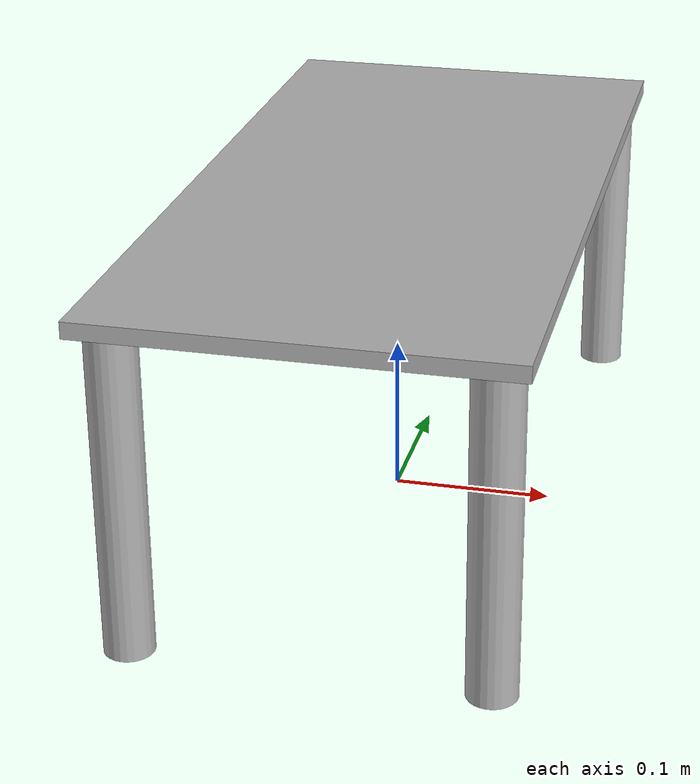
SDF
<?xml version="1.0" ?>
<sdf version="1.5">
  <model name="ra_table">
    <static>True</static>
    <link name="link">
      <collision name="plate">
        <pose>0 0 0.11  0 0 0</pose>
        <geometry>
          <box> <size> 0.25 0.50 0.01 </size> </box>
        </geometry>
      </collision>
      <collision name="leg0">
        <pose>0.105 0.23 0.05  0 0 0</pose>
        <geometry>
          <cylinder>
            <radius>0.015</radius>
            <length>0.1</length>
          </cylinder>
        </geometry>
      </collision>
      <collision name="leg1">
        <pose>-0.105 0.23 0.05  0 0 0</pose>
        <geometry>
          <cylinder>
            <radius>0.015</radius>
            <length>0.1</length>
          </cylinder>
        </geometry>
      </collision>
      <collision name="leg2">
        <pose>0.105 -0.23 0.05  0 0 0</pose>
        <geometry>
          <cylinder>
            <radius>0.015</radius>
            <length>0.1</length>
          </cylinder>
        </geometry>
      </collision>
      <collision name="leg3">
        <pose>-0.105 -0.23 0.05  0 0 0</pose>
        <geometry>
          <cylinder>
            <radius>0.015</radius>
            <length>0.1</length>
          </cylinder>
        </geometry>
      </collision>
      <visual name="plate">
        <pose>0 0 0.205  0 0 0</pose>
        <geometry>
          <box> <size> 0.25 0.50 0.01 </size> </box>
        </geometry>
        <material>
          <ambient>.55 .55 .6 1</ambient>
          <diffuse>.7 .7 .7 1</diffuse>
          <specular>0.1 0.1 0.1 1</specular>
        </material>
      </visual>
      <visual name="leg0">
        <pose>0.105 0.23 0.1  0 0 0</pose>
        <geometry>
          <cylinder>
            <radius>0.015</radius>
            <length>0.2</length>
          </cylinder>
        </geometry>
        <material>
          <ambient>.55 .55 .6 1</ambient>
          <diffuse>.7 .7 .7 1</diffuse>
          <specular>0.1 0.1 0.1 1</specular>
        </material>
      </visual>
      <visual name="leg1">
        <pose>-0.105 0.23 0.1  0 0 0</pose>
        <geometry>
          <cylinder>
            <radius>0.015</radius>
            <length>0.2</length>
          </cylinder>
        </geometry>
        <material>
          <ambient>.55 .55 .6 1</ambient>
          <diffuse>.7 .7 .7 1</diffuse>
          <specular>0.1 0.1 0.1 1</specular>
        </material>
      </visual>
      <visual name="leg2">
        <pose>0.105 -0.23 0.1  0 0 0</pose>
        <geometry>
          <cylinder>
            <radius>0.015</radius>
            <length>0.2</length>
          </cylinder>
        </geometry>
        <material>
          <ambient>.55 .55 .6 1</ambient>
          <diffuse>.7 .7 .7 1</diffuse>
          <specular>0.1 0.1 0.1 1</specular>
        </material>
      </visual>
      <visual name="leg3">
        <pose>-0.105 -0.23 0.1  0 0 0</pose>
        <geometry>
          <cylinder>
            <radius>0.015</radius>
            <length>0.2</length>
          </cylinder>
        </geometry>
        <material>
          <ambient>.55 .55 .6 1</ambient>
          <diffuse>.7 .7 .7 1</diffuse>
          <specular>0.1 0.1 0.1 1</specular>
        </material>
      </visual>
    </link>
  </model>
</sdf>
